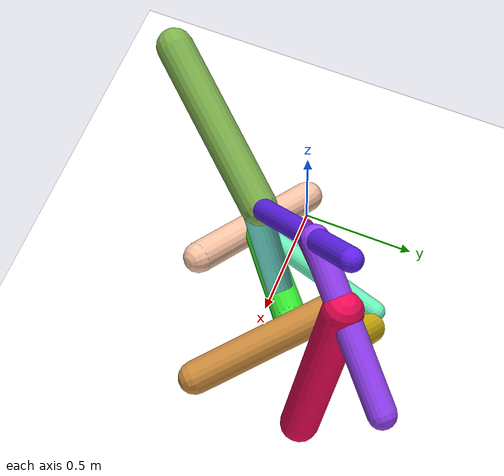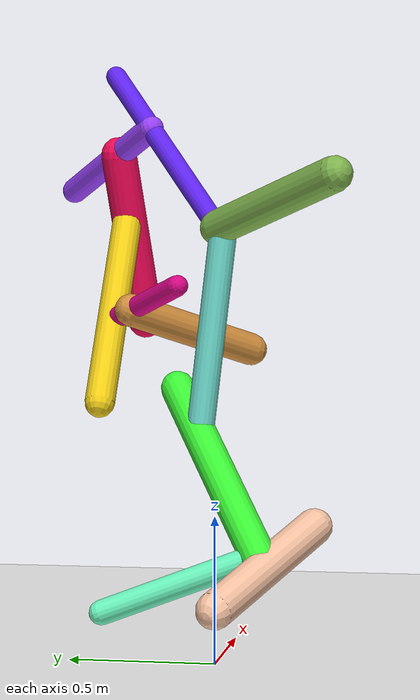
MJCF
<mujoco model="morphology">
  <option timestep="0.01"/>
  <default>
    <default class="/"/>
    <default class="0/"/>
    <default class="0/1/"/>
    <default class="0/1/2/"/>
    <default class="0/1/3/"/>
    <default class="0/1/3/4/"/>
    <default class="0/1/3/4/5/"/>
    <default class="0/1/3/4/6/"/>
    <default class="0/1/3/4/6/7/"/>
    <default class="0/1/3/4/6/7/8/"/>
    <default class="0/1/3/4/6/7/8/9/"/>
    <default class="0/1/3/4/6/7/8/9/10/"/>
  </default>
  <asset>
    <texture name="texplane" type="2d" builtin="checker" rgb1="0.10000000000000001 0.20000000000000001 0.29999999999999999" rgb2="0.20000000000000001 0.29999999999999999 0.40000000000000002" width="300" height="300"/>
    <material name="MatPlane" class="/" texture="texplane" texrepeat="20 20" specular="1" shininess="1" reflectance="0.5"/>
  </asset>
  <worldbody>
    <light name="//unnamed_light_0" class="/" directional="true" pos="0 0 1.5" dir="0 0 -1.3" cutoff="100" exponent="1" diffuse="1 1 1" specular="0.10000000000000001 0.10000000000000001 0.10000000000000001"/>
    <geom name="ground" class="/" type="plane" size="15 15 0.5" material="MatPlane" rgba="1 1 1 1"/>
    <site name="body" class="/" size="9.9999999999999995e-07 9.9999999999999995e-07 9.9999999999999995e-07" pos="0 0 0.18208315819501877"/>
    <body pos="0 0 0.18208315819501877" name="0/">
      <freejoint name="0/"/>
      <geom name="0/geom" class="0/" type="capsule" contype="1" conaffinity="1" condim="3" size="0.066226124356100979" rgba="0.98937588154692258 0.77887945352826504 0.65270495196366074 1" friction="0.59999999999999998 0.10000000000000001 0.10000000000000001" fromto="0 0 0 0.54969082541884551 -0.27394937585919493 0.21727544755868622"/>
      <site name="0/end0" class="0/" size="0.0050000000000000001" pos="0.54969082541884551 -0.27394937585919493 0.21727544755868622"/>
      <site name="0/attach1" class="0/" size="9.9999999999999995e-07 9.9999999999999995e-07 9.9999999999999995e-07" pos="0.26446493527813258 -0.13180137016273172 0.10453464842232243"/>
      <body pos="0.26446493527813258 -0.13180137016273172 0.10453464842232243" name="0/1/">
        <geom name="0/1/geom" class="0/1/" type="capsule" contype="1" conaffinity="1" condim="3" size="0.063835565120991783" rgba="0.23623043919690645 0.98127564757493735 0.21200899835214226 1" friction="0.59999999999999998 0.10000000000000001 0.10000000000000001" fromto="0 0 0 0.60337389672186692 0.40391554837923516 0.57745953074786671"/>
        <site name="0/1/end1" class="0/1/" size="0.0050000000000000001" pos="0.60337389672186692 0.40391554837923516 0.57745953074786671"/>
        <site name="0/1/attach2" class="0/1/" size="9.9999999999999995e-07 9.9999999999999995e-07 9.9999999999999995e-07" pos="0.039696138167318706 0.026573717397293126 0.037991224749931399"/>
        <body pos="0.039696138167318706 0.026573717397293126 0.037991224749931399" name="0/1/2/">
          <joint name="0/1/2/joint/" class="0/1/" type="hinge" axis="-5.5511151231257827e-17 -0.81943594908933104 0.57317076455456717" limited="true" range="-62.918008040011834 62.918008040011834"/>
          <geom name="0/1/2/geom" class="0/1/2/" type="capsule" contype="1" conaffinity="1" condim="3" size="0.045256983144331818" rgba="0.43623484531312307 0.99634413324666615 0.77012138282202025 1" friction="0.59999999999999998 0.10000000000000001 0.10000000000000001" fromto="0 0 0 0.07458703713417203 0.57018967091226935 -0.22460903141926813"/>
          <site name="0/1/2/end2" class="0/1/2/" size="0.0050000000000000001" pos="0.07458703713417203 0.57018967091226935 -0.22460903141926813"/>
        </body>
        <site name="0/1/attach3" class="0/1/" size="9.9999999999999995e-07 9.9999999999999995e-07 9.9999999999999995e-07" pos="0.44211965103356382 0.29596739644634701 0.42313100982215524"/>
        <body pos="0.44211965103356382 0.29596739644634701 0.42313100982215524" name="0/1/3/">
          <joint name="0/1/3/joint/" class="0/1/" type="hinge" axis="-0.75960686242170106 0.37278024282208572 0.53294681265897959" limited="true" range="-55.463113499015392 55.463113499015392"/>
          <geom name="0/1/3/geom" class="0/1/3/" type="capsule" contype="1" conaffinity="1" condim="3" size="0.051315184366671582" rgba="0.41475290031632395 0.83285395301952181 0.78184325327082371 1" friction="0.59999999999999998 0.10000000000000001 0.10000000000000001" fromto="0 0 0 0.03223838313169769 -0.081169415815831369 0.73767727926706383"/>
          <site name="0/1/3/end3" class="0/1/3/" size="0.0050000000000000001" pos="0.03223838313169769 -0.081169415815831369 0.73767727926706383"/>
          <site name="0/1/3/attach4" class="0/1/3/" size="9.9999999999999995e-07 9.9999999999999995e-07 9.9999999999999995e-07" pos="0.031646307234637946 -0.079678694197236249 0.72412942436756667"/>
          <body pos="0.031646307234637946 -0.079678694197236249 0.72412942436756667" name="0/1/3/4/">
            <joint name="0/1/3/4/joint/" class="0/1/3/" type="hinge" axis="0.99905780031461 0.0047467554678078949 -0.043139076752545913" limited="true" range="-53.67695994268928 53.67695994268928"/>
            <geom name="0/1/3/4/geom" class="0/1/3/4/" type="capsule" contype="1" conaffinity="1" condim="3" size="0.038729664003511063" rgba="0.37492749537091252 0.13738631495019338 0.94249044386606351 1" friction="0.59999999999999998 0.10000000000000001 0.10000000000000001" fromto="0 0 0 0.35495648714666528 0.46269106951319672 0.59510379494572074"/>
            <site name="0/1/3/4/end4" class="0/1/3/4/" size="0.0050000000000000001" pos="0.35495648714666528 0.46269106951319672 0.59510379494572074"/>
            <site name="0/1/3/4/attach5" class="0/1/3/4/" size="9.9999999999999995e-07 9.9999999999999995e-07 9.9999999999999995e-07" pos="0.016359136710160423 0.021324378437431343 0.027426979618010858"/>
            <body pos="0.016359136710160423 0.021324378437431343 0.027426979618010858" name="0/1/3/4/5/">
              <joint name="0/1/3/4/5/joint/" class="0/1/3/4/" type="hinge" axis="-0.90471614717646542 0.2614888836949153 0.3363216566654002" limited="true" range="-59.81851970853247 59.81851970853247"/>
              <geom name="0/1/3/4/5/geom" class="0/1/3/4/5/" type="capsule" contype="1" conaffinity="1" condim="3" size="0.065053700644516294" rgba="0.4999700488493749 0.70524026070862122 0.3051759883990629 1" friction="0.59999999999999998 0.10000000000000001 0.10000000000000001" fromto="0 0 0 -0.38181804071947756 -0.46757471866417599 0.19088095929407123"/>
              <site name="0/1/3/4/5/end5" class="0/1/3/4/5/" size="0.0050000000000000001" pos="-0.38181804071947756 -0.46757471866417599 0.19088095929407123"/>
            </body>
            <site name="0/1/3/4/attach6" class="0/1/3/4/" size="9.9999999999999995e-07 9.9999999999999995e-07 9.9999999999999995e-07" pos="0.23556561183359284 0.30706328473095379 0.39493851961341364"/>
            <body pos="0.23556561183359284 0.30706328473095379 0.39493851961341364" name="0/1/3/4/6/">
              <joint name="0/1/3/4/6/joint/" class="0/1/3/4/" type="hinge" axis="-5.5511151231257827e-17 -0.78945984871316055 0.61380220533148444" limited="true" range="-42.887872665450715 42.887872665450715"/>
              <geom name="0/1/3/4/6/geom" class="0/1/3/4/6/" type="capsule" contype="1" conaffinity="1" condim="3" size="0.047907154291089674" rgba="0.59556142811943191 0.25342711685456032 0.97859933002501887 1" friction="0.59999999999999998 0.10000000000000001 0.10000000000000001" fromto="0 0 0 0.37683893930425905 0.37205362538004527 -0.23042125627080545"/>
              <site name="0/1/3/4/6/end6" class="0/1/3/4/6/" size="0.0050000000000000001" pos="0.37683893930425905 0.37205362538004527 -0.23042125627080545"/>
              <site name="0/1/3/4/6/attach7" class="0/1/3/4/6/" size="9.9999999999999995e-07 9.9999999999999995e-07 9.9999999999999995e-07" pos="0.15541920399379178 0.15344560306408206 -0.095032345380697603"/>
              <body pos="0.15541920399379178 0.15344560306408206 -0.095032345380697603" name="0/1/3/4/6/7/">
                <joint name="0/1/3/4/6/7/joint/" class="0/1/3/4/6/" type="hinge" axis="-0.75777478687795807 0.55474346446103717 -0.34356522089674779" limited="true" range="-38.8936405284187 38.8936405284187"/>
                <geom name="0/1/3/4/6/7/geom" class="0/1/3/4/6/7/" type="capsule" contype="1" conaffinity="1" condim="3" size="0.067699105664007039" rgba="0.96428600707036982 0.030522134839025883 0.34957196730168383 1" friction="0.59999999999999998 0.10000000000000001 0.10000000000000001" fromto="0 0 0 0.17109700117390925 -0.071687357345550984 -0.63940236863498168"/>
                <site name="0/1/3/4/6/7/end7" class="0/1/3/4/6/7/" size="0.0050000000000000001" pos="0.17109700117390925 -0.071687357345550984 -0.63940236863498168"/>
                <site name="0/1/3/4/6/7/attach8" class="0/1/3/4/6/7/" size="9.9999999999999995e-07 9.9999999999999995e-07 9.9999999999999995e-07" pos="0.060294254891842196 -0.025262487166106712 -0.22532416774353209"/>
                <body pos="0.060294254891842196 -0.025262487166106712 -0.22532416774353209" name="0/1/3/4/6/7/8/">
                  <joint name="0/1/3/4/6/7/8/joint/" class="0/1/3/4/6/7/" type="hinge" axis="0.96641367484788476 0.028633502868598504 0.25539133027665861" limited="true" range="-51.24604204288795 51.24604204288795"/>
                  <geom name="0/1/3/4/6/7/8/geom" class="0/1/3/4/6/7/8/" type="capsule" contype="1" conaffinity="1" condim="3" size="0.056181902011434297" rgba="0.95280984798329771 0.81125373710434778 0.087618324156638727 1" friction="0.59999999999999998 0.10000000000000001 0.10000000000000001" fromto="0 0 0 -0.42719811945428676 0.027590838034770804 -0.69295175476019022"/>
                  <site name="0/1/3/4/6/7/8/end8" class="0/1/3/4/6/7/8/" size="0.0050000000000000001" pos="-0.42719811945428676 0.027590838034770804 -0.69295175476019022"/>
                  <site name="0/1/3/4/6/7/8/attach9" class="0/1/3/4/6/7/8/" size="9.9999999999999995e-07 9.9999999999999995e-07 9.9999999999999995e-07" pos="-0.24404398111315154 0.015761721902837516 -0.39586013432607614"/>
                  <body pos="-0.24404398111315154 0.015761721902837516 -0.39586013432607614" name="0/1/3/4/6/7/8/9/">
                    <joint name="0/1/3/4/6/7/8/9/joint/" class="0/1/3/4/6/7/8/" type="hinge" axis="1.6653345369377348e-16 0.9992082687536481 0.039784867152441672" limited="true" range="-56.091601809685187 56.091601809685187"/>
                    <geom name="0/1/3/4/6/7/8/9/geom" class="0/1/3/4/6/7/8/9/" type="capsule" contype="1" conaffinity="1" condim="3" size="0.039567199507501087" rgba="0.85428113457386956 0.020344371670564576 0.52638486701236209 1" friction="0.59999999999999998 0.10000000000000001 0.10000000000000001" fromto="0 0 0 -0.27103819973337795 -0.29401905937305406 0.13823283784508855"/>
                    <site name="0/1/3/4/6/7/8/9/end9" class="0/1/3/4/6/7/8/9/" size="0.0050000000000000001" pos="-0.27103819973337795 -0.29401905937305406 0.13823283784508855"/>
                    <site name="0/1/3/4/6/7/8/9/attach10" class="0/1/3/4/6/7/8/9/" size="9.9999999999999995e-07 9.9999999999999995e-07 9.9999999999999995e-07" pos="-0.079390447791169189 -0.086121826390992487 0.040490111381942528"/>
                    <body pos="-0.079390447791169189 -0.086121826390992487 0.040490111381942528" name="0/1/3/4/6/7/8/9/10/">
                      <joint name="0/1/3/4/6/7/8/9/10/joint/" class="0/1/3/4/6/7/8/9/" type="hinge" axis="0 0.42547175964797906 0.90497170217750589" limited="true" range="-57.011178354760922 57.011178354760922"/>
                      <geom name="0/1/3/4/6/7/8/9/10/geom" class="0/1/3/4/6/7/8/9/10/" type="capsule" contype="1" conaffinity="1" condim="3" size="0.061510897253062011" rgba="0.82280838308520243 0.56109361569774119 0.2452895476317124 1" friction="0.59999999999999998 0.10000000000000001 0.10000000000000001" fromto="0 0 0 0.38058392605911218 -0.39841745496656672 -0.16510854462674507"/>
                      <site name="0/1/3/4/6/7/8/9/10/end10" class="0/1/3/4/6/7/8/9/10/" size="0.0050000000000000001" pos="0.38058392605911218 -0.39841745496656672 -0.16510854462674507"/>
                    </body>
                  </body>
                </body>
              </body>
            </body>
          </body>
        </body>
      </body>
      <camera name="0/iso" class="0/" mode="trackcom" pos="-2.2999999999999998 -2.2999999999999998 1" xyaxes="0.45000000000000001 -0.45000000000000001 0 0.29999999999999999 0.14999999999999999 0.93999999999999995"/>
    </body>
  </worldbody>
  <actuator>
    <motor name="0/1/2/motor" class="0/1/2/" ctrllimited="true" ctrlrange="-1 1" gear="88" joint="0/1/2/joint/"/>
    <motor name="0/1/3/motor" class="0/1/3/" ctrllimited="true" ctrlrange="-1 1" gear="83" joint="0/1/3/joint/"/>
    <motor name="0/1/3/4/motor" class="0/1/3/4/" ctrllimited="true" ctrlrange="-1 1" gear="79" joint="0/1/3/4/joint/"/>
    <motor name="0/1/3/4/5/motor" class="0/1/3/4/5/" ctrllimited="true" ctrlrange="-1 1" gear="62" joint="0/1/3/4/5/joint/"/>
    <motor name="0/1/3/4/6/motor" class="0/1/3/4/6/" ctrllimited="true" ctrlrange="-1 1" gear="72" joint="0/1/3/4/6/joint/"/>
    <motor name="0/1/3/4/6/7/motor" class="0/1/3/4/6/7/" ctrllimited="true" ctrlrange="-1 1" gear="61" joint="0/1/3/4/6/7/joint/"/>
    <motor name="0/1/3/4/6/7/8/motor" class="0/1/3/4/6/7/8/" ctrllimited="true" ctrlrange="-1 1" gear="91" joint="0/1/3/4/6/7/8/joint/"/>
    <motor name="0/1/3/4/6/7/8/9/motor" class="0/1/3/4/6/7/8/9/" ctrllimited="true" ctrlrange="-1 1" gear="52" joint="0/1/3/4/6/7/8/9/joint/"/>
    <motor name="0/1/3/4/6/7/8/9/10/motor" class="0/1/3/4/6/7/8/9/10/" ctrllimited="true" ctrlrange="-1 1" gear="62" joint="0/1/3/4/6/7/8/9/10/joint/"/>
  </actuator>
  <sensor>
    <subtreelinvel name="velocity" body="0/"/>
  </sensor>
</mujoco>
